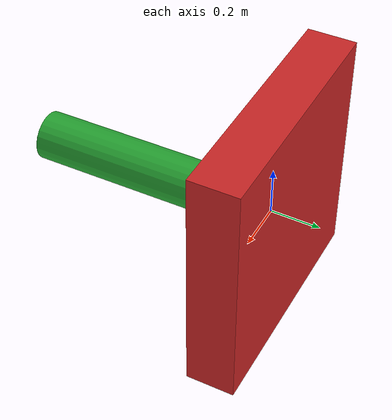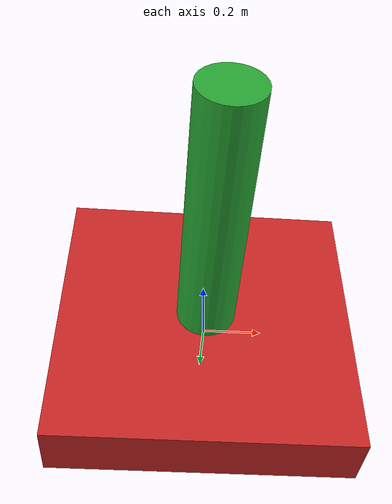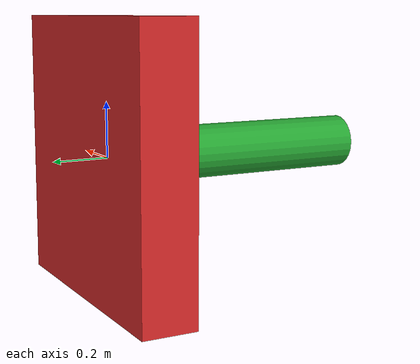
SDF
<?xml version="1.0"?>
<sdf version="1.5">
  <model name="Simple_Double_Pendulum_L_Is_Not_Specified">
    <!-- Specifies X_WD, which is the model frame, D, expressed in the world
    frame, W. -->
    <pose frame="">0 0 0 0 0 0</pose>
    <link name="base">
      <!-- Specifies X_DL, which is the link frame, L, expressed in the model
      frame, D. -->
      <pose frame="">0 0 0 0 0 0</pose>
      <inertial>
        <!-- Specifies X_IL, the inertial frame, I, expressed in the link frame,
        L. -->
        <pose frame="">0 0 0 0 0 0</pose>
        <mass>1.0</mass>
        <inertia>
          <ixx>0</ixx>
          <ixy>0</ixy>
          <ixz>0</ixz>
          <iyy>0</iyy>
          <iyz>0</iyz>
          <izz>0</izz>
        </inertia>
      </inertial>
      <visual name="base_visual">
        <pose frame="">0 0 0 0 0 0</pose>
        <geometry>
          <box>
            <size>1 0.2 1</size>
          </box>
        </geometry>
        <material>
          <script>
            <uri>file://media/materials/scripts/gazebo.material</uri>
            <name>Gazebo/Red</name>
          </script>
        </material>
      </visual>
    </link>
    <link name="upper_arm">
      <!-- This specifies X_DL.
           Explicitly make it to be at Bo.-->
      <pose frame="">0 0 0 0 0 0</pose>
      <inertial>
        <!-- This specifies X_LI. -->
        <pose frame="">0 -0.5 0 0 0 0</pose>
        <mass>1</mass>
        <inertia>
          <ixx>0</ixx>
          <ixy>0</ixy>
          <ixz>0</ixz>
          <iyy>0</iyy>
          <iyz>0</iyz>
          <izz>0</izz>
        </inertia>
      </inertial>
      <visual name="upper_arm_visual">
        <pose frame="">0 -0.5 0 1.57079632679 0 0</pose>
        <geometry>
          <cylinder>
            <length>1</length>
            <radius>0.1</radius>
          </cylinder>
        </geometry>
        <material>
          <script>
            <uri>file://media/materials/scripts/gazebo.material</uri>
            <name>Gazebo/Green</name>
          </script>
        </material>
      </visual>
    </link>
    <link name="lower_arm">
      <!-- This specifies X_DL. When L is not specified, the parsers makes L = F
       when parsing the joint. The parser will then expect F to be expressed in
       the model frame D-->
      <inertial>
        <!-- This specifies X_LI. -->
        <pose frame="">0 -0.5 0 0 0 0</pose>
        <mass>1</mass>
        <inertia>
          <ixx>0</ixx>
          <ixy>0</ixy>
          <ixz>0</ixz>
          <iyy>0</iyy>
          <iyz>0</iyz>
          <izz>0</izz>
        </inertia>
      </inertial>
      <visual name="lower_arm_visual">
        <!-- This specifies X_LV. -->
        <pose frame="">0 -0.5 0 1.57079632679 0 0</pose>
        <geometry>
          <cylinder>
            <length>1</length>
            <radius>0.1</radius>
          </cylinder>
        </geometry>
        <material>
          <script>
            <uri>file://media/materials/scripts/gazebo.material</uri>
            <name>Gazebo/Blue</name>
          </script>
        </material>
      </visual>
    </link>
    <joint name="joint1" type="revolute">
      <parent>base</parent>
      <child>upper_arm</child>
      <axis>
        <xyz>0 0 1</xyz>
        <!-- The default is the axis expressed in the inboard frame F. -->
        <use_parent_model_frame>1</use_parent_model_frame>
      </axis>
    </joint>
    <joint name="joint2" type="revolute">
      <parent>upper_arm</parent>
      <child>lower_arm</child>
      <!-- Pose of the joint outboard frame M -->
      <pose>0 -1.0 0 0 0 0</pose>
      <axis>
        <xyz>0 0 1</xyz>
        <!-- The default is the axis expressed in the joint inboard frame F. -->
        <use_parent_model_frame>1</use_parent_model_frame>
      </axis>
    </joint>
  </model>
</sdf>
